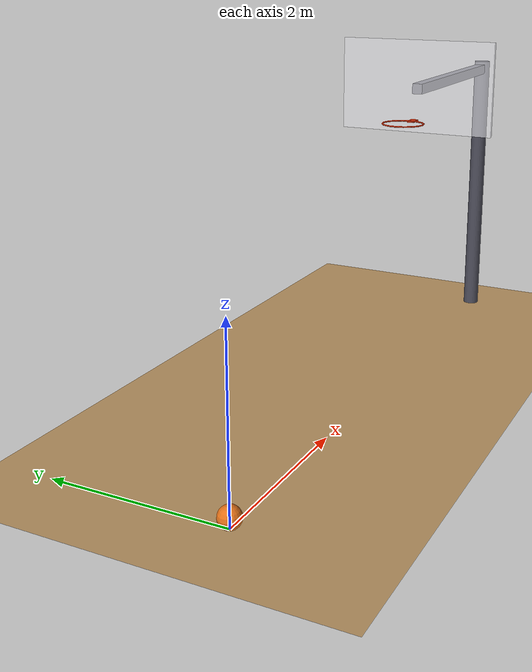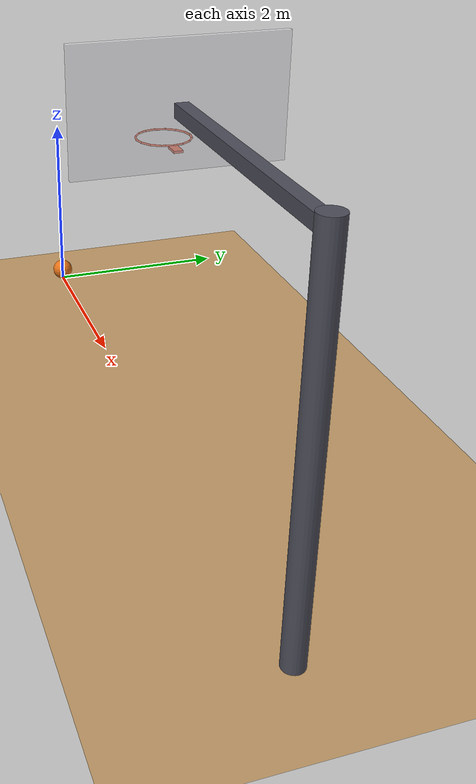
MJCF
<mujoco model="basketball_shot">
  <option timestep="0.002" gravity="0 0 -9.81"/>

  <visual>
    <global offwidth="1280" offheight="720"/>
  </visual>

  <worldbody>
    <light name="sun" pos="2 -3 8" dir="0 0.3 -1" directional="true"/>
    <camera name="side" pos="2.5 -8 2.2" xyaxes="1 0 0 0 0.25 1"/>

    <geom name="floor" type="plane" size="12 12 0.1" rgba="0.75 0.6 0.4 1" solref="0.01 0.3"/>

    <!-- Basketball: size 7, radius 0.1193 m, mass 0.62 kg, thin-shell inertia (2/3 m r^2) -->
    <body name="ball" pos="0 0 0.12">
      <freejoint name="ball_free"/>
      <inertial pos="0 0 0" mass="0.62" diaginertia="0.005883 0.005883 0.005883"/>
      <geom name="ball" type="sphere" size="0.1193" rgba="0.9 0.45 0.1 1" friction="0.8 0.005 0.0001" solref="0.01 0.3"/>
    </body>

    <!-- Hoop: origin at rim center, 3.05 m high, 4 m from launch point. Inner diameter 0.4572 m, tube radius 0.008 m -->
    <body name="hoop" pos="4 0 3.05">
      <geom name="rim_00" type="capsule" size="0.008" fromto="0.2366 0 0 0.21859 0.09054 0" rgba="0.9 0.2 0.05 1"/>
      <geom name="rim_01" type="capsule" size="0.008" fromto="0.21859 0.09054 0 0.16730 0.16730 0" rgba="0.9 0.2 0.05 1"/>
      <geom name="rim_02" type="capsule" size="0.008" fromto="0.16730 0.16730 0 0.09054 0.21859 0" rgba="0.9 0.2 0.05 1"/>
      <geom name="rim_03" type="capsule" size="0.008" fromto="0.09054 0.21859 0 0 0.2366 0" rgba="0.9 0.2 0.05 1"/>
      <geom name="rim_04" type="capsule" size="0.008" fromto="0 0.2366 0 -0.09054 0.21859 0" rgba="0.9 0.2 0.05 1"/>
      <geom name="rim_05" type="capsule" size="0.008" fromto="-0.09054 0.21859 0 -0.16730 0.16730 0" rgba="0.9 0.2 0.05 1"/>
      <geom name="rim_06" type="capsule" size="0.008" fromto="-0.16730 0.16730 0 -0.21859 0.09054 0" rgba="0.9 0.2 0.05 1"/>
      <geom name="rim_07" type="capsule" size="0.008" fromto="-0.21859 0.09054 0 -0.2366 0 0" rgba="0.9 0.2 0.05 1"/>
      <geom name="rim_08" type="capsule" size="0.008" fromto="-0.2366 0 0 -0.21859 -0.09054 0" rgba="0.9 0.2 0.05 1"/>
      <geom name="rim_09" type="capsule" size="0.008" fromto="-0.21859 -0.09054 0 -0.16730 -0.16730 0" rgba="0.9 0.2 0.05 1"/>
      <geom name="rim_10" type="capsule" size="0.008" fromto="-0.16730 -0.16730 0 -0.09054 -0.21859 0" rgba="0.9 0.2 0.05 1"/>
      <geom name="rim_11" type="capsule" size="0.008" fromto="-0.09054 -0.21859 0 0 -0.2366 0" rgba="0.9 0.2 0.05 1"/>
      <geom name="rim_12" type="capsule" size="0.008" fromto="0 -0.2366 0 0.09054 -0.21859 0" rgba="0.9 0.2 0.05 1"/>
      <geom name="rim_13" type="capsule" size="0.008" fromto="0.09054 -0.21859 0 0.16730 -0.16730 0" rgba="0.9 0.2 0.05 1"/>
      <geom name="rim_14" type="capsule" size="0.008" fromto="0.16730 -0.16730 0 0.21859 -0.09054 0" rgba="0.9 0.2 0.05 1"/>
      <geom name="rim_15" type="capsule" size="0.008" fromto="0.21859 -0.09054 0 0.2366 0 0" rgba="0.9 0.2 0.05 1"/>
      <geom name="bracket" type="box" size="0.07 0.04 0.01" pos="0.311 0 -0.01" rgba="0.9 0.2 0.05 1"/>
    </body>

    <!-- Backboard: face 0.381 m behind rim center (15 in), bottom edge ~6 in below rim -->
    <body name="backboard" pos="4.406 0 3.432">
      <geom name="board" type="box" size="0.025 0.915 0.5335" rgba="0.95 0.95 0.97 0.6"/>
    </body>

    <!-- Support stanchion well behind the basket -->
    <body name="support" pos="0 0 0">
      <geom name="arm" type="box" size="1.25 0.06 0.06" pos="5.68 0 3.40" rgba="0.3 0.3 0.35 1"/>
      <geom name="pole" type="cylinder" size="0.1 1.75" pos="7.0 0 1.75" rgba="0.3 0.3 0.35 1"/>
    </body>
  </worldbody>

  <keyframe>
    <key name="start" qpos="0 0 0.12 1 0 0 0" qvel="3.193 0 8.495 0 0 0"/>
  </keyframe>
</mujoco>
